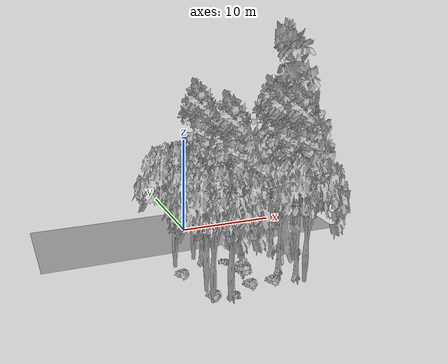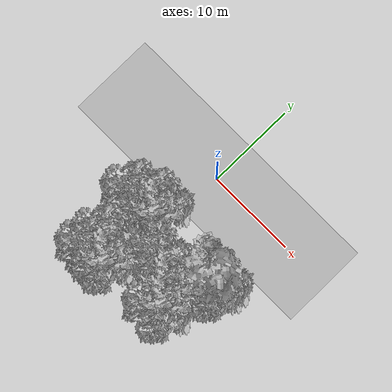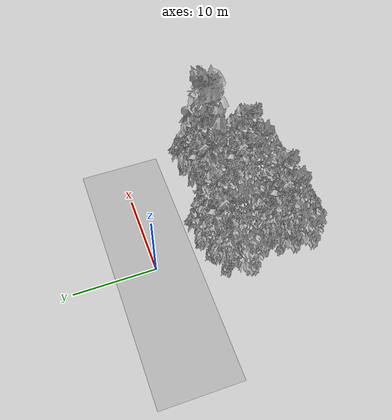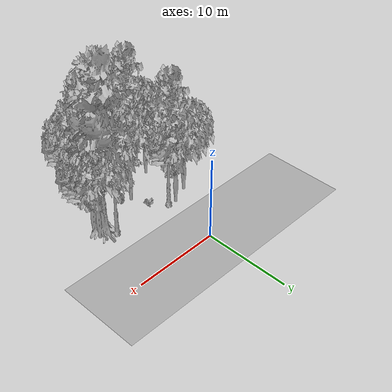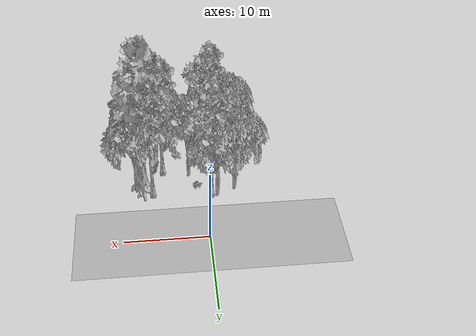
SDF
<sdf version="1.7">
 <world name="default">
  <model name="ground_plane">
   <static>1</static>
   <link name="link">
    <collision name="collision">
     <geometry><plane><normal>0 0 1</normal><size>100 100</size></plane></geometry>
     <surface><contact><ode><min_depth>0.01</min_depth><max_vel>0</max_vel></ode></contact></surface>
    </collision>
    <visual name="grass">
     <cast_shadows>0</cast_shadows>
     <geometry>
      <mesh>
       <scale>0.5814285714285714 0.18142857142857144 0.1</scale>
       <uri>file://grass_plane/meshes/grass_plane.dae</uri>
      </mesh>
     </geometry>
    </visual>
   </link>
  </model>
  <model name="Tree 28">
   <static>1</static>
   <pose>-3.7736838428580555 -7.6888656081389195 0 1.57079 -0 0</pose>
   <link name="link">
    <collision name="collision">
     <geometry><mesh><scale>3.5 5 3.5</scale><uri>model://tree_2/meshes/tree_2.obj</uri></mesh></geometry>
    </collision>
    <visual name="visual">
     <geometry><mesh><scale>3.5 5 3.5</scale><uri>model://tree_2/meshes/tree_2.obj</uri></mesh></geometry>
    </visual>
   </link>
  </model>
  <model name="Tree 49">
   <static>1</static>
   <pose>-2.930027027903357 -14.79273995330431 0 1.57079 -0 0</pose>
   <link name="link">
    <collision name="collision">
     <geometry><mesh><scale>3.5 5 3.5</scale><uri>model://tree_2/meshes/tree_2.obj</uri></mesh></geometry>
    </collision>
    <visual name="visual">
     <geometry><mesh><scale>3.5 5 3.5</scale><uri>model://tree_2/meshes/tree_2.obj</uri></mesh></geometry>
    </visual>
   </link>
  </model>
  <model name="Tree 113">
   <static>1</static>
   <pose>6.067904730367488 -14.287019409190803 0 1.57079 -0 0</pose>
   <link name="link">
    <collision name="collision">
     <geometry><mesh><scale>3.5 5 3.5</scale><uri>model://tree_2/meshes/tree_2.obj</uri></mesh></geometry>
    </collision>
    <visual name="visual">
     <geometry><mesh><scale>3.5 5 3.5</scale><uri>model://tree_2/meshes/tree_2.obj</uri></mesh></geometry>
    </visual>
   </link>
  </model>
  <model name="Tree 119">
   <static>1</static>
   <pose>8.217528252335654 -9.145834719261593 0 1.57079 -0 0</pose>
   <link name="link">
    <collision name="collision">
     <geometry><mesh><scale>3.5 5 3.5</scale><uri>model://tree_2/meshes/tree_2.obj</uri></mesh></geometry>
    </collision>
    <visual name="visual">
     <geometry><mesh><scale>3.5 5 3.5</scale><uri>model://tree_2/meshes/tree_2.obj</uri></mesh></geometry>
    </visual>
   </link>
  </model>
  <model name="Tree 138">
   <static>1</static>
   <pose>6.388170477321474 -7.681099876201989 0 1.57079 -0 0</pose>
   <link name="link">
    <collision name="collision">
     <geometry><mesh><scale>3.5 5 3.5</scale><uri>model://tree_9/meshes/tree_9.obj</uri></mesh></geometry>
    </collision>
    <visual name="visual">
     <geometry><mesh><scale>3.5 5 3.5</scale><uri>model://tree_9/meshes/tree_9.obj</uri></mesh></geometry>
    </visual>
   </link>
  </model>
  <model name="Tree 145">
   <static>1</static>
   <pose>-1.5807447153133865 -6.747007528793063 0 1.57079 -0 0</pose>
   <link name="link">
    <collision name="collision">
     <geometry><mesh><scale>3.5 5 3.5</scale><uri>model://tree_2/meshes/tree_2.obj</uri></mesh></geometry>
    </collision>
    <visual name="visual">
     <geometry><mesh><scale>3.5 5 3.5</scale><uri>model://tree_2/meshes/tree_2.obj</uri></mesh></geometry>
    </visual>
   </link>
  </model>
  <model name="Tree 192">
   <static>1</static>
   <pose>-0.8101571530588529 -7.151180322275163 0 1.57079 -0 0</pose>
   <link name="link">
    <collision name="collision">
     <geometry><mesh><scale>3.5 5 3.5</scale><uri>model://tree_9/meshes/tree_9.obj</uri></mesh></geometry>
    </collision>
    <visual name="visual">
     <geometry><mesh><scale>3.5 5 3.5</scale><uri>model://tree_9/meshes/tree_9.obj</uri></mesh></geometry>
    </visual>
   </link>
  </model>
  <model name="Tree 219">
   <static>1</static>
   <pose>-0.7871150584763953 -13.980955640566462 0 1.57079 -0 0</pose>
   <link name="link">
    <collision name="collision">
     <geometry><mesh><scale>3.5 5 3.5</scale><uri>model://tree_9/meshes/tree_9.obj</uri></mesh></geometry>
    </collision>
    <visual name="visual">
     <geometry><mesh><scale>3.5 5 3.5</scale><uri>model://tree_9/meshes/tree_9.obj</uri></mesh></geometry>
    </visual>
   </link>
  </model>
  <model name="Tree 295">
   <static>1</static>
   <pose>5.067163932032756 -11.534955876237115 0 1.57079 -0 0</pose>
   <link name="link">
    <collision name="collision">
     <geometry><mesh><scale>3.5 5 3.5</scale><uri>model://tree_9/meshes/tree_9.obj</uri></mesh></geometry>
    </collision>
    <visual name="visual">
     <geometry><mesh><scale>3.5 5 3.5</scale><uri>model://tree_9/meshes/tree_9.obj</uri></mesh></geometry>
    </visual>
   </link>
  </model>
  <model name="Tree 312">
   <static>1</static>
   <pose>-1.3919425380349608 -14.893630876851399 0 1.57079 -0 0</pose>
   <link name="link">
    <collision name="collision">
     <geometry><mesh><scale>3.5 5 3.5</scale><uri>model://tree_2/meshes/tree_2.obj</uri></mesh></geometry>
    </collision>
    <visual name="visual">
     <geometry><mesh><scale>3.5 5 3.5</scale><uri>model://tree_2/meshes/tree_2.obj</uri></mesh></geometry>
    </visual>
   </link>
  </model>
  <model name="Tree 348">
   <static>1</static>
   <pose>1.7351073617041877 -10.516975412447849 0 1.57079 -0 0</pose>
   <link name="link">
    <collision name="collision">
     <geometry><mesh><scale>3.5 5 3.5</scale><uri>model://tree_2/meshes/tree_2.obj</uri></mesh></geometry>
    </collision>
    <visual name="visual">
     <geometry><mesh><scale>3.5 5 3.5</scale><uri>model://tree_2/meshes/tree_2.obj</uri></mesh></geometry>
    </visual>
   </link>
  </model>
  <model name="Tree 351">
   <static>1</static>
   <pose>6.057720416148214 -12.9904606351946 0 1.57079 -0 0</pose>
   <link name="link">
    <collision name="collision">
     <geometry><mesh><scale>3.5 5 3.5</scale><uri>model://tree_9/meshes/tree_9.obj</uri></mesh></geometry>
    </collision>
    <visual name="visual">
     <geometry><mesh><scale>3.5 5 3.5</scale><uri>model://tree_9/meshes/tree_9.obj</uri></mesh></geometry>
    </visual>
   </link>
  </model>
  <model name="Tree 356">
   <static>1</static>
   <pose>7.569057032355872 -8.492671123516772 0 1.57079 -0 0</pose>
   <link name="link">
    <collision name="collision">
     <geometry><mesh><scale>3.5 5 3.5</scale><uri>model://tree_4/meshes/tree_4.obj</uri></mesh></geometry>
    </collision>
    <visual name="visual">
     <geometry><mesh><scale>3.5 5 3.5</scale><uri>model://tree_4/meshes/tree_4.obj</uri></mesh></geometry>
    </visual>
   </link>
  </model>
  <model name="Tree 400">
   <static>1</static>
   <pose>-2.7346714704721435 -12.86371737618271 0 1.57079 -0 0</pose>
   <link name="link">
    <collision name="collision">
     <geometry><mesh><scale>3.5 5 3.5</scale><uri>model://tree_2/meshes/tree_2.obj</uri></mesh></geometry>
    </collision>
    <visual name="visual">
     <geometry><mesh><scale>3.5 5 3.5</scale><uri>model://tree_2/meshes/tree_2.obj</uri></mesh></geometry>
    </visual>
   </link>
  </model>
  <model name="Tree 447">
   <static>1</static>
   <pose>8.244460032910425 -8.211989152161314 0 1.57079 -0 0</pose>
   <link name="link">
    <collision name="collision">
     <geometry><mesh><scale>3.5 5 3.5</scale><uri>model://tree_2/meshes/tree_2.obj</uri></mesh></geometry>
    </collision>
    <visual name="visual">
     <geometry><mesh><scale>3.5 5 3.5</scale><uri>model://tree_2/meshes/tree_2.obj</uri></mesh></geometry>
    </visual>
   </link>
  </model>
  <model name="Bush 19">
   <static>1</static>
   <pose>3.2787190492531693 -13.853979219850473 0 1.57079 -0 0</pose>
   <link name="link">
    <collision name="collision">
     <geometry><mesh><scale>2 2 2</scale><uri>model://bush_3/meshes/bush_3.obj</uri></mesh></geometry>
     <surface><contact><collide_without_contact>false</collide_without_contact></contact></surface>
    </collision>
    <visual name="visual">
     <geometry><mesh><scale>2 2 2</scale><uri>model://bush_3/meshes/bush_3.obj</uri></mesh></geometry>
    </visual>
   </link>
  </model>
  <model name="Bush 175">
   <static>1</static>
   <pose>-0.7831556613113619 -14.537733922858552 0 1.57079 -0 0</pose>
   <link name="link">
    <collision name="collision">
     <geometry><mesh><scale>2 2 2</scale><uri>model://bush_2/meshes/bush_2.obj</uri></mesh></geometry>
     <surface><contact><collide_without_contact>false</collide_without_contact></contact></surface>
    </collision>
    <visual name="visual">
     <geometry><mesh><scale>2 2 2</scale><uri>model://bush_2/meshes/bush_2.obj</uri></mesh></geometry>
    </visual>
   </link>
  </model>
  <model name="Bush 183">
   <static>1</static>
   <pose>-3.830406227964154 -10.093943844319345 0 1.57079 -0 0</pose>
   <link name="link">
    <collision name="collision">
     <geometry><mesh><scale>2 2 2</scale><uri>model://bush_3/meshes/bush_3.obj</uri></mesh></geometry>
     <surface><contact><collide_without_contact>false</collide_without_contact></contact></surface>
    </collision>
    <visual name="visual">
     <geometry><mesh><scale>2 2 2</scale><uri>model://bush_3/meshes/bush_3.obj</uri></mesh></geometry>
    </visual>
   </link>
  </model>
  <model name="Bush 204">
   <static>1</static>
   <pose>1.1844125978447835 -12.11029477152539 0 1.57079 -0 0</pose>
   <link name="link">
    <collision name="collision">
     <geometry><mesh><scale>2 2 2</scale><uri>model://bush_1/meshes/bush_1.obj</uri></mesh></geometry>
     <surface><contact><collide_without_contact>false</collide_without_contact></contact></surface>
    </collision>
    <visual name="visual">
     <geometry><mesh><scale>2 2 2</scale><uri>model://bush_1/meshes/bush_1.obj</uri></mesh></geometry>
    </visual>
   </link>
  </model>
  <model name="Bush 228">
   <static>1</static>
   <pose>0.8312081389725989 -8.664792370455913 0 1.57079 -0 0</pose>
   <link name="link">
    <collision name="collision">
     <geometry><mesh><scale>2 2 2</scale><uri>model://bush_2/meshes/bush_2.obj</uri></mesh></geometry>
     <surface><contact><collide_without_contact>false</collide_without_contact></contact></surface>
    </collision>
    <visual name="visual">
     <geometry><mesh><scale>2 2 2</scale><uri>model://bush_2/meshes/bush_2.obj</uri></mesh></geometry>
    </visual>
   </link>
  </model>
  <model name="Bush 250">
   <static>1</static>
   <pose>1.1069719123217396 -13.79586871404408 0 1.57079 -0 0</pose>
   <link name="link">
    <collision name="collision">
     <geometry><mesh><scale>2 2 2</scale><uri>model://bush_3/meshes/bush_3.obj</uri></mesh></geometry>
     <surface><contact><collide_without_contact>false</collide_without_contact></contact></surface>
    </collision>
    <visual name="visual">
     <geometry><mesh><scale>2 2 2</scale><uri>model://bush_3/meshes/bush_3.obj</uri></mesh></geometry>
    </visual>
   </link>
  </model>
  <model name="Bush 325">
   <static>1</static>
   <pose>-2.6109468277739865 -14.488314165698382 0 1.57079 -0 0</pose>
   <link name="link">
    <collision name="collision">
     <geometry><mesh><scale>2 2 2</scale><uri>model://bush_3/meshes/bush_3.obj</uri></mesh></geometry>
     <surface><contact><collide_without_contact>false</collide_without_contact></contact></surface>
    </collision>
    <visual name="visual">
     <geometry><mesh><scale>2 2 2</scale><uri>model://bush_3/meshes/bush_3.obj</uri></mesh></geometry>
    </visual>
   </link>
  </model>
 </world>
</sdf>
